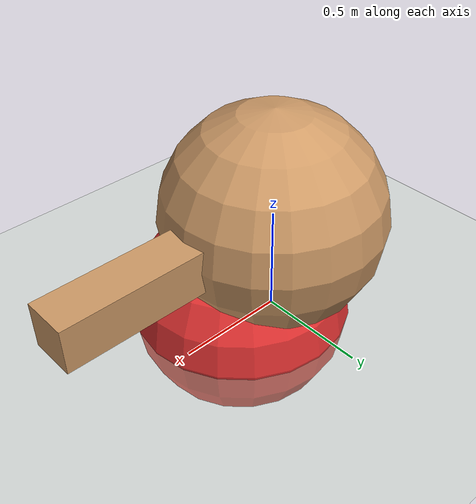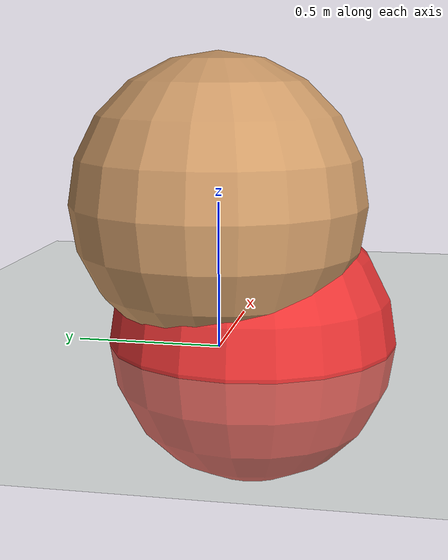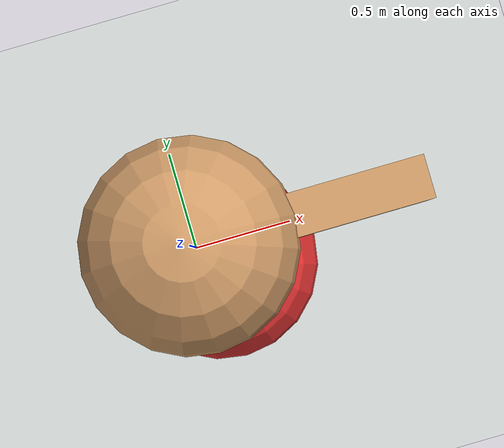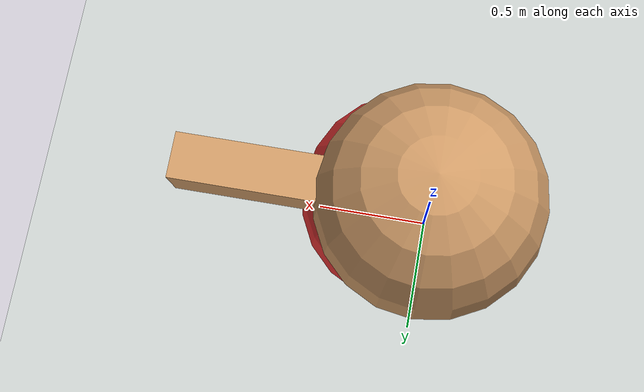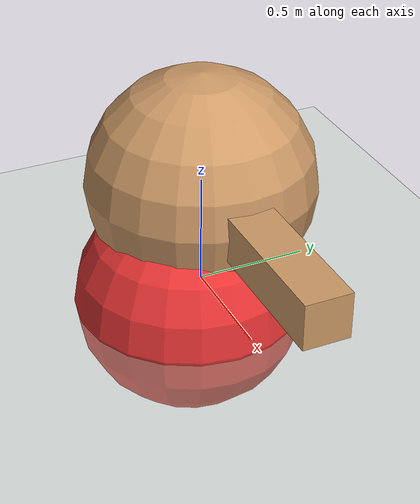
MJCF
<mujoco>
  <compiler inertiafromgeom="true" angle="degree" coordinate="local" />
  <option timestep="0.02" integrator="RK4" />
  <default>
    <joint limited="false" armature="0" damping="0" />
    <geom condim="3" conaffinity="0" margin="0" friction="1 0.5 0.5" rgba="0.8 0.6 0.4 1" density="100" />
  </default>
  <asset>
    <texture type="skybox" builtin="gradient" width="100" height="100" rgb1="1 1 1" rgb2="0 0 0" />
    <texture name="texgeom" type="cube" builtin="flat" mark="cross" width="127" height="1278" rgb1="0.8 0.6 0.4" rgb2="0.8 0.6 0.4" markrgb="1 1 1" random="0.01" />
    <texture name="texplane" type="2d" builtin="checker" rgb1="0 0 0" rgb2="0.8 0.8 0.8" width="100" height="100" />
    <material name='MatPlane' texture="texplane" shininess="1" texrepeat="30 30" specular="1"  reflectance="0.5" />
    <material name='geom' texture="texgeom" texuniform="true" />
  </asset>
  <worldbody>
    <light directional="true" cutoff="100" exponent="1" diffuse="1 1 1" specular=".1 .1 .1" pos="0 0 1.3" dir="-0 0 -1.3" />
    <geom name='floor' material="MatPlane" pos='0 0 0' size='40 40 40' type='plane' conaffinity='1' rgba='0.8 0.9 0.8 1' condim='3' />
    <body name="torso" pos="0 0 0">
      <geom name="pointbody" type="sphere" size="0.5" pos="0 0 0.5" />
      <geom name="pointarrow" type="box" size="0.5 0.1 0.1" pos="0.6 0 0.5" />
      <joint name='ballx' type='slide' axis='1 0 0' pos='0 0 0' />
      <joint name='bally' type='slide' axis='0 1 0' pos='0 0 0' />
      <joint name='rot' type='hinge' axis='0 0 1' pos='0 0 0' limited="false" />
    </body>
    <body name="target" pos=".1 -.1 .01">
			<joint armature="0" axis="1 0 0" damping="0" limited="true" name="target_x" pos="0 0 0" range="-.27 .27" ref=".1" stiffness="0" type="slide"/>
			<joint armature="0" axis="0 1 0" damping="0" limited="true" name="target_y" pos="0 0 0" range="-.27 .27" ref="-.1" stiffness="0" type="slide"/>
			<geom conaffinity="0" contype="0" name="target" pos="0 0 0" rgba="0.9 0.2 0.2 1" size=".5" type="sphere"/>
		</body>
  </worldbody>
  <actuator>
    <!-- Those are just dummy actuators for providing ranges -->
    <motor joint='ballx' ctrlrange="-1 1" ctrllimited="true" />
    <motor joint='rot' ctrlrange="-0.25 0.25" ctrllimited="true" />
  </actuator>
</mujoco>
